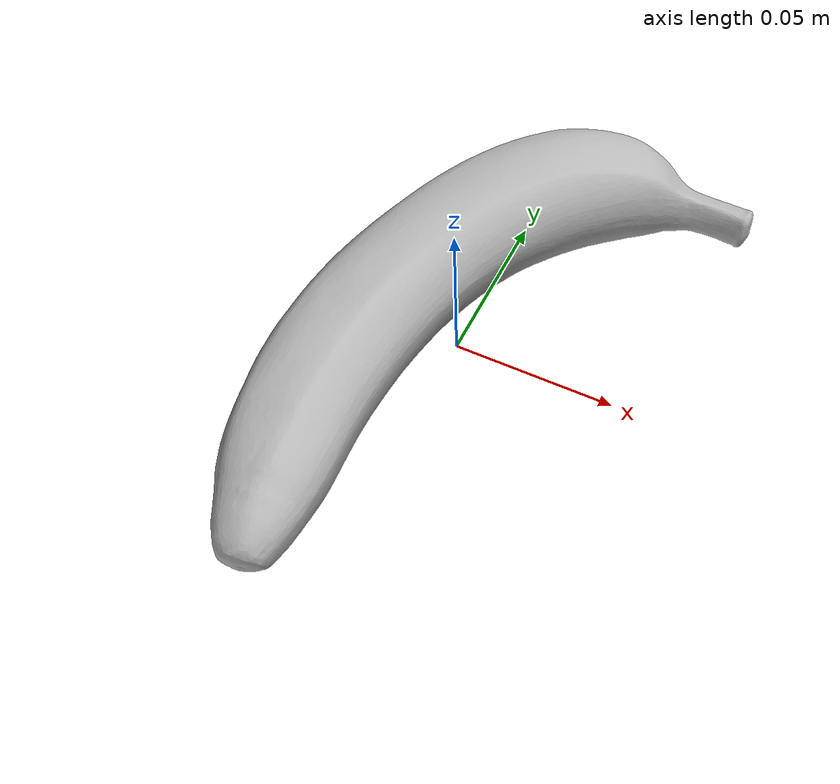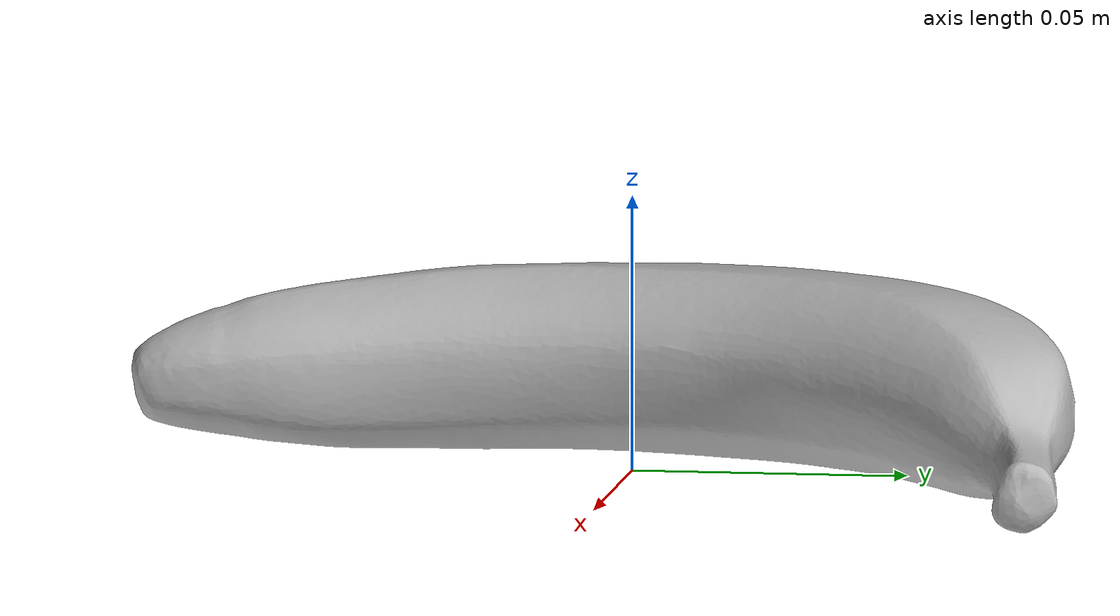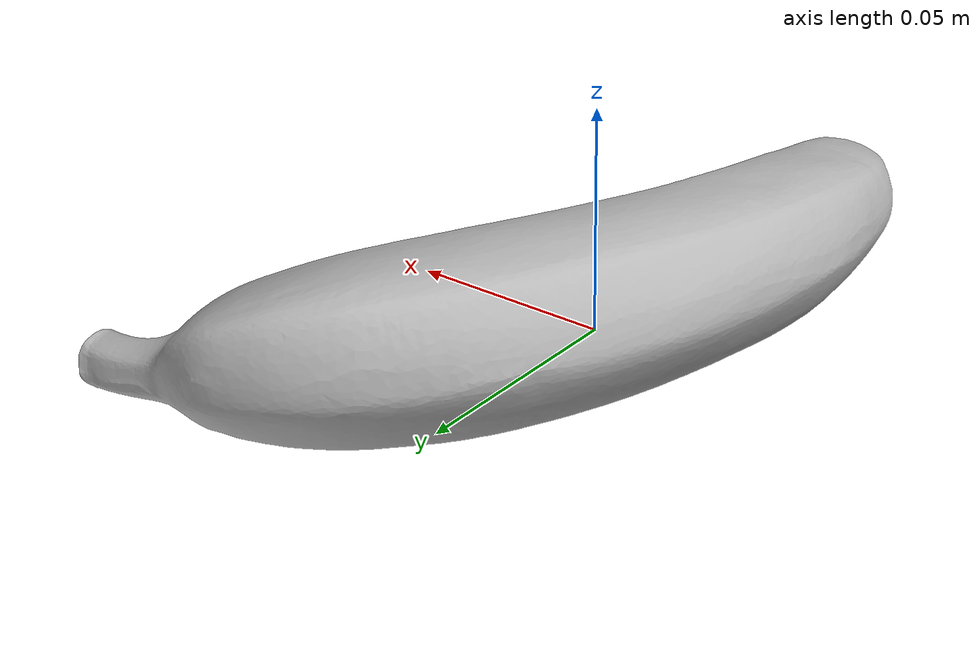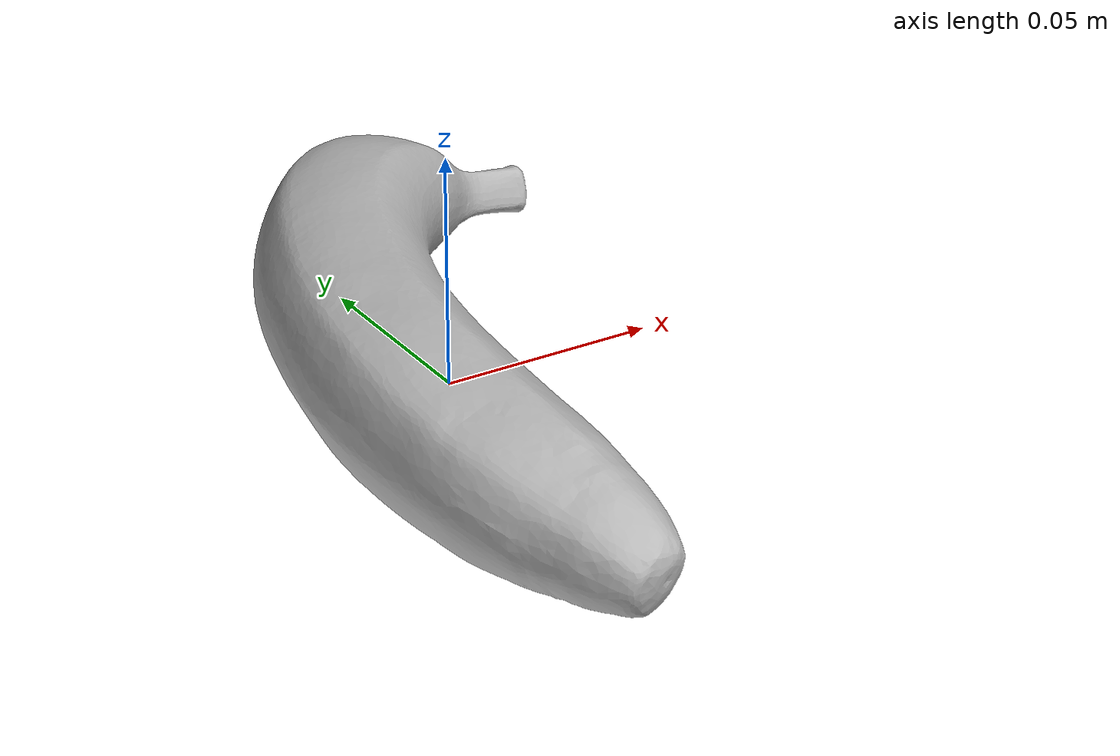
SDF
<?xml version='1.0'?>
<sdf version="1.4">
  <model name="banana">
    <static>false</static>
    <link name="link">
      <inertial>
        <pose>-0.00993610244000216 0.004072679186328214 0.01712688923116843 -1.5542738497302573 -1.3696969889633943 -0.3362925442158162</pose>
        <mass>0.00017153252062943915</mass>
        <inertia>
          <ixx>4.2719946419307256e-07</ixx>
          <ixy>1.5930412749986416e-23</ixy>
          <ixz>-1.756307001395421e-23</ixz>
          <iyy>4.107664030738321e-07</iyy>
          <iyz>1.7914713890611302e-23</iyz>
          <izz>4.075387802083211e-08</izz>
        </inertia>
      </inertial>
      <collision name="collision">
        <geometry>
          <mesh>
            <!-- Use a downsampled mesh for collisions -->
            <uri>model://011_banana/google_16k/011_banana.obj</uri>
            </mesh>
        </geometry>
        <surface>
          <friction>
            <ode>
              <mu>0.9</mu>
              <mu2>0.9</mu2>
            </ode>
          </friction>
          <contact>
            <ode>
              <kp>1000000000000.0</kp>
              <kd>1</kd>
              <min_depth>0.0001</min_depth>
              <max_vel>0.01</max_vel>
            </ode>
          </contact>
          <bounce>
            <restitution_coefficient>0.1</restitution_coefficient>
            <threshold>1000.0</threshold>
          </bounce>
        </surface>
      </collision>
      <visual name="visual">
        <geometry>
          <mesh>
            <uri>model://011_banana/google_16k/011_banana.dae</uri>
            </mesh>
        </geometry>
      </visual>
    </link>
  </model>
</sdf>
